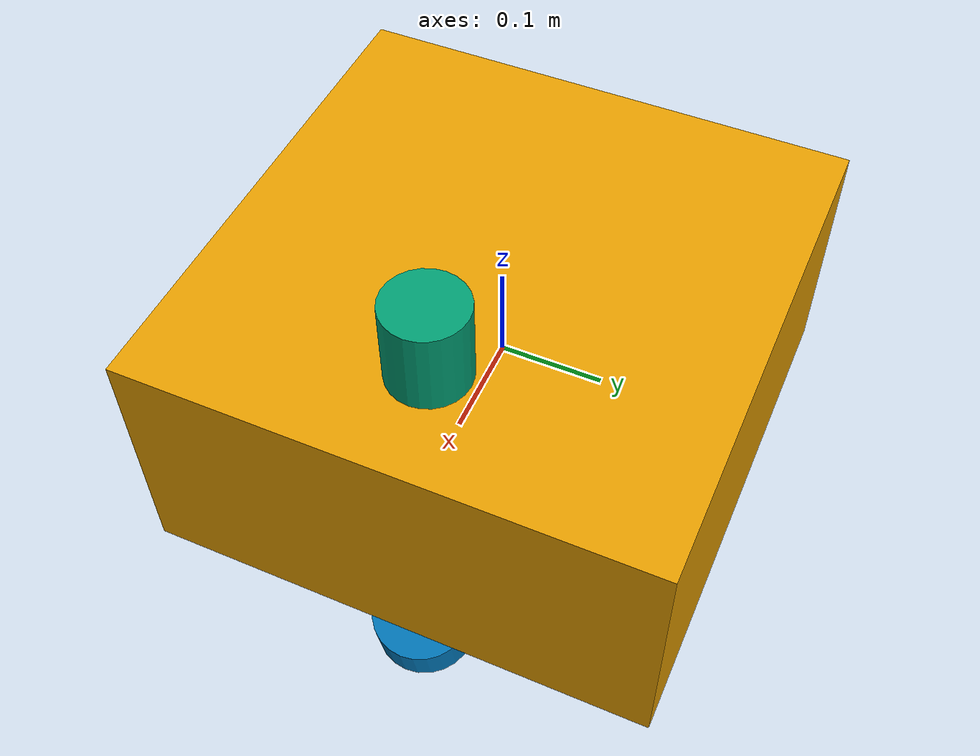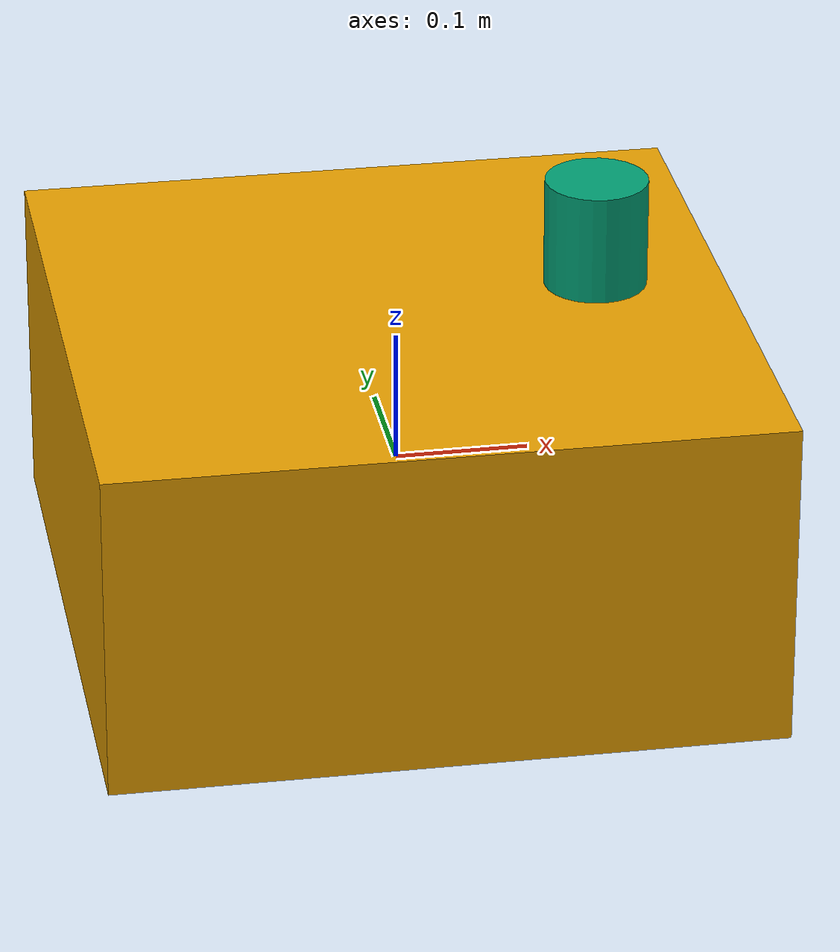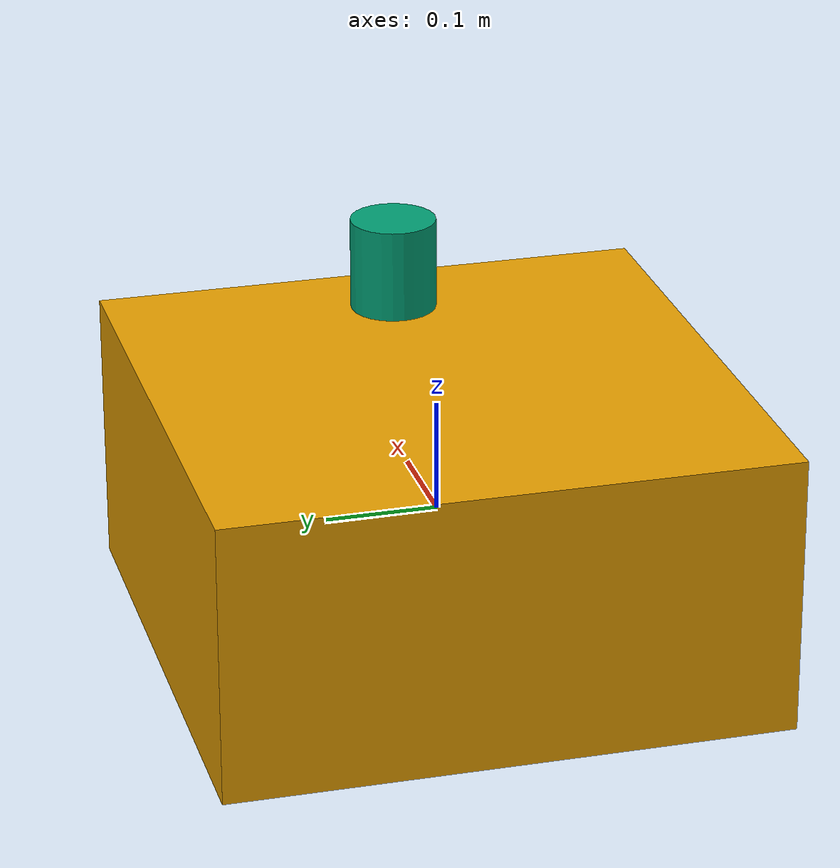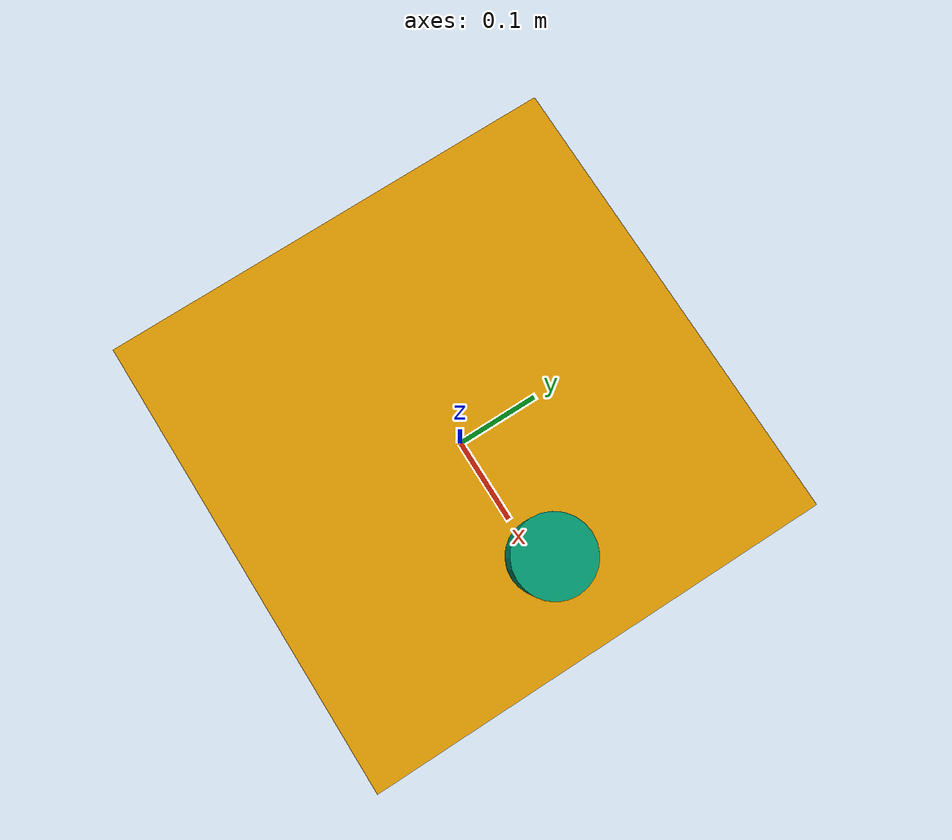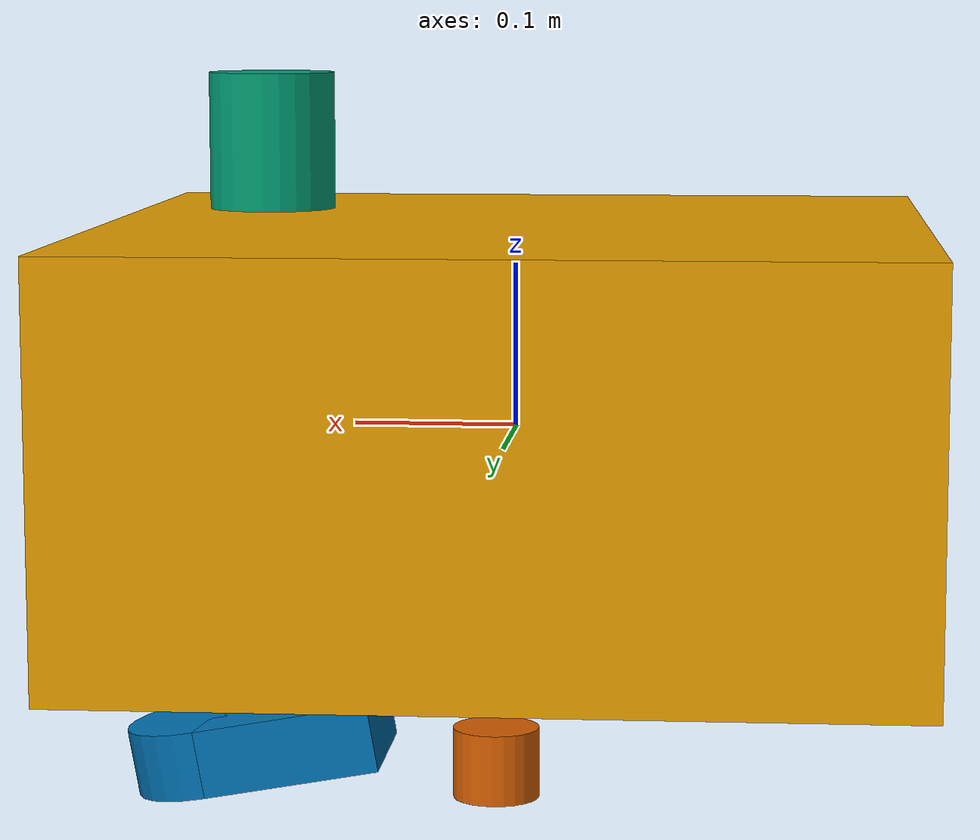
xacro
<?xml version="1.0"?>
<robot xmlns:xacro="http://www.ros.org/wiki/xacro" name="dummy">
	<!-- Dummy xacro courtesy of:
		https://github.com/ubi-agni/human_hand/blob/master/robots/human_hand.urdf.xacro
		https://wiki.ros.org/xacro
	-->

	<!-- Creating robot -->
  <link name="base_link">
    <inertial>
      <origin xyz="0 0 0" />
      <mass value="20.0" />
      <inertia ixx="0.52083125" ixy="0.0" ixz="0.0" iyy="0.52083125" iyz="0.0" izz="0.83333" />
    </inertial>
    <visual name="visual">
      <origin xyz="0 0 0" />
      <geometry>
        <box size=".50 .50 .25" />
      </geometry>
    </visual>
    <collision name="collision">
      <origin xyz="0 0 0" />
      <geometry>
        <box size=".50 .50 .25" />
      </geometry>
    </collision>
  </link>
  <gazebo reference="base_link">
    <turnGravityOff>1</turnGravityOff>
  </gazebo>

  <!-- Link must have inertia, otherwise overlooked by URDF parser -->
  <link name="imu_link">
    <inertial>
      <origin xyz="0 0 0" />
      <mass value="0.01" />
      <inertia ixx="0.0" ixy="0.0" ixz="0.0" iyy="0.0" iyz="0.0" izz="0.0" />
    </inertial>
  </link>
  <joint name="imu_joint" type="revolute">
    <origin xyz="0 0 0" rpy="0 0 0" />
    <axis xyz="0 0 1" />
    <parent link="base_link" />
    <child link="imu_link" />
    <limit upper="0" lower="0" effort="0" velocity="0" />
  </joint>
  <gazebo reference="imu_link">
    <turnGravityOff>1</turnGravityOff>
    <sensor name="imu_sensor" type="imu">
      <always_on>true</always_on>
      <update_rate>100</update_rate>
      <visualize>true</visualize>
      <topic>__default_topic__</topic>
      <plugin filename="libgazebo_ros_imu_sensor.so" name="imu_plugin">
        <topicName>imu</topicName>
        <bodyName>imu_link</bodyName>
        <updateRateHZ>10.0</updateRateHZ>
        <gaussianNoise>0.0</gaussianNoise>
        <xyzOffset>0 0 0</xyzOffset>
        <rpyOffset>0 0 0</rpyOffset>
        <frameName>imu_link</frameName>
        <initialOrientationAsReference>false</initialOrientationAsReference>
      </plugin>
      <pose>0 0 0 0 0 0</pose>
    </sensor>
  </gazebo>

  <!-- This separation is incredibly crucial:
        https://github.com/gazebosim/ros_gz/issues/109#issuecomment-689142931
        https://classic.gazebosim.org/tutorials?tut=ros_gzplugins
	-->
	<gazebo>
		<plugin name="dummy_control" filename="libdummy_plugin.so">
			<!-- D term used here as a damper -->
			<pid_x>2 0.0 10</pid_x>
			<pid_y>2 0.0 10</pid_y>
			<pid_z>2 0.0 10</pid_z>
			<pid_r>1 0.0 5</pid_r>
			<pid_p>1 0.0 5</pid_p>
			<pid_w>1 0.0 5</pid_w>
			<max_force>100</max_force>
			<max_torque>100</max_torque>
			<link_name>base_link</link_name>
		</plugin>

		<!-- Send joint states:
		https://answers.ros.org/question/355311/gazebo-is-not-able-to-send-the-joint-states-to-generate-tf-tree/ -->
		<plugin name="joint_state_publisher" filename="libgazebo_ros_joint_state_publisher.so">
			<robotNamespace>dummy</robotNamespace>
			<!-- Must have this list of joints -->
			<jointName>imu_joint, ping360_sonar_joint, mbe_sonar_joint, ping2_joint, ping360_depth_joint</jointName>
			<updateRate>30</updateRate>
		</plugin>

		<!-- Link base_link to map:
		https://answers.gazebosim.org//question/5308/getting-the-gazebo-plugin-p3d-working-hydro/ -->
		<plugin name="map_to_base_link" filename="libgazebo_ros_p3d.so">
			<alwaysOn>true</alwaysOn>
			<updateRate>30</updateRate>
			<bodyName>base_link</bodyName>
			<topicName>dummy/base_link</topicName>
			<frameName>map</frameName>
		</plugin>
	</gazebo>

	<!-- Mount the sonars -->
  <!-- Attention: need to update joint_state_publisher above-->
	<xacro:include filename="../models/sonars.urdf.xacro"/>
	<xacro:ping360_macro parent_link="base_link" namespace="/dummy" gravity="false">
		<origin xyz="0.15 0 0.175" rpy="0 0 0"/>
		<axis xyz="0 0 1"/>
	</xacro:ping360_macro>
	<xacro:mbe_macro parent_link="base_link" namespace="/dummy" gravity="false">
    <origin xyz="0.15 0 -0.2" rpy="0 0.174533 0"/>
    <axis xyz="0 0 1"/>
	</xacro:mbe_macro>
	<xacro:ping2_macro parent_link="base_link" namespace="/dummy" gravity="false">
    <origin xyz="0.0 0.15 -0.175" rpy="0 1.57079632679 0" />
    <axis xyz="0 0 1" />
	</xacro:ping2_macro>
</robot>

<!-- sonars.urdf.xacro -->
<robot xmlns:xacro="http://www.ros.org/wiki/xacro">
	<xacro:property name="deg2rad" value="${pi / 180}"/>

	<!-- Macro for sonar sensor -->
	<xacro:macro name="sonar_macro" params=
		"sonar_link topic hfov vfov bin_count beam_count image_width image_height
		clip_near clip_far image_format=R32G32B32 disable_color:=true
		faux_depth:=false faux_depth_link:='' faux_depth_namespace:=''
		prefix:=^ namespace:=^ gravity:=^"
	>
		<gazebo reference="${sonar_link}">
			<!-- Plugin for sonar -->
			<xacro:unless value="${gravity}">
				<turnGravityOff>1</turnGravityOff>
			</xacro:unless>
			<sensor name="Sonar" type="camera">
				<plugin name="FLS" filename="libForwardLookingSonarGazebo.so">
					<topic>${namespace}/${topic}</topic>
					<link_reference>${sonar_link}</link_reference>
					<horizontal_fov>${hfov}</horizontal_fov>
					<vfov>${vfov}</vfov>
					<bin_count>${bin_count}</bin_count>
					<beam_count>${beam_count}</beam_count>
					<image>
						<width>${image_width}</width>
						<height>${image_height}</height>
						<format>${image_format}</format>
					</image>
					<clip>
						<near>${clip_near}</near>
						<far>${clip_far}</far>
					</clip>
					<disable_color>${disable_color}</disable_color>
				</plugin>
			</sensor>

			<!-- Plugin for point cloud (simulation only):
			http://classic.gazebosim.org/tutorials?tut=ros_depth_camera -->
			<xacro:if value="${faux_depth}">
				<sensor name="Depth" type="depth">
					<update_rate>1</update_rate>
					<camera>
						<horizontal_fov>${hfov}</horizontal_fov>
						<image>
							<width>${beam_count}</width>
							<!-- Approximately 128 * tan(25/2 deg) / tan(120/2 deg) -->
							<height>${round(beam_count * tan(vfov/2) / tan(hfov/2))}</height>
							<format>R8G8B8</format>
						</image>
						<clip>
							<near>${clip_near}</near>
							<far>${clip_far}</far>
						</clip>
					</camera>
					<plugin name="DepthCamera" filename="libgazebo_ros_openni_kinect.so">
						<baseline>0.25</baseline> <!-- Unused -->
						<alwaysOn>true</alwaysOn>
						<updateRate>0.0</updateRate>
						<cameraName>DepthCamera</cameraName>
						<imageTopicName>${namespace}/${faux_depth_namespace}/color/image_raw</imageTopicName>
						<cameraInfoTopicName>${namespace}/${faux_depth_namespace}/color/camera_info</cameraInfoTopicName>
						<depthImageTopicName>${namespace}/${faux_depth_namespace}/depth/image_raw</depthImageTopicName>
						<depthImageCameraInfoTopicName>${namespace}/${faux_depth_namespace}/depth/camera_info</depthImageCameraInfoTopicName>
						<pointCloudTopicName>${namespace}/${faux_depth_namespace}/depth/points</pointCloudTopicName>
						<frameName>${faux_depth_link}</frameName>
						<pointCloudCutoff>${clip_near}</pointCloudCutoff>
						<pointCloudCutoffMax>${clip_far}</pointCloudCutoffMax>
					</plugin>
				</sensor>
			</xacro:if>
		</gazebo>
	</xacro:macro>

	<!-- Macro for altimeter -->
	<xacro:macro name="altimeter_macro" params=
		"alti_link topic update_rate range_min range_max range_resolution
		noise_mean noise_stddev visualize:=true prefix:=^ namespace:=^ gravity:=^"
	>
		<gazebo reference="${alti_link}">
			<!-- Plugin for altimeter -->
			<xacro:unless value="${gravity}">
				<turnGravityOff>1</turnGravityOff>
			</xacro:unless>
			<sensor type="ray" name="Altimeter">
				<visualize>${visualize}</visualize>
				<update_rate>${update_rate}</update_rate>
				<ray>
					<scan>
						<horizontal>
						<samples>1</samples>
						<resolution>1</resolution>
						<min_angle>0.0</min_angle>
						<max_angle>0.0</max_angle>
						</horizontal>
					</scan>
					<range>
						<min>${range_min}</min>
						<max>${range_max}</max>
						<resolution>${range_resolution}</resolution>
					</range>
					<noise>
						<type>gaussian</type>
						<mean>${noise_mean}</mean>
						<stddev>${noise_stddev}</stddev>
					</noise>
				</ray>
				<plugin name="Altimeter" filename="libgazebo_ros_laser.so">
					<topicName>${namespace}/${topic}</topicName>
					<frameName>${alti_link}</frameName>
				</plugin>
			</sensor>
		</gazebo>
	</xacro:macro>

	<!-- Macro for Ping360 -->
	<xacro:macro name="ping360_macro" params="parent_link *joint_origin *joint_axis prefix:='' namespace:='' gravity:=true">
		<link name="${prefix}ping360_sonar_link">
			<inertial>
				<mass value="0.1" />
				<origin xyz="0 0 0" rpy="0 0 0" />
				<inertia ixx="0.01" ixy="0.001" ixz="0.001" iyy="0.01" iyz="0.001" izz="0.01" />
			</inertial>
			<visual name="visual">
				<origin xyz="0 0 0" rpy="0 0 0" />
				<geometry>
					<cylinder length="0.083" radius="0.0385" />
				</geometry>
			</visual>
			<collision>
				<origin xyz="0 0 0" rpy="0 0 0" />
				<geometry>
					<box size="0.1 0.1 0.1" />
				</geometry>
			</collision>
		</link>
		<joint name="${prefix}ping360_sonar_joint" type="revolute">
			<xacro:insert_block name="joint_origin"/>
			<xacro:insert_block name="joint_axis"/>
			<parent link="${parent_link}" />
			<child link="${prefix}ping360_sonar_link" />
			<limit upper="0" lower="0" effort="0" velocity="0" />
		</joint>
		<link name="${prefix}ping360_depth_link">
			<inertial>
				<mass value="0.0001" />
				<origin xyz="0 0 0" rpy="0 0 0" />
				<inertia ixx="0.0001" ixy="0.0001" ixz="0.0001" iyy="0.0001" iyz="0.0001" izz="0.0001" />
			</inertial>
		</link>
		<joint name="${prefix}ping360_depth_joint" type="revolute">
			<origin xyz="0 0 0" rpy="-1.57079632679 0 -1.57079632679"/>
			<axis xyz="0 0 1"/>
			<parent link="${prefix}ping360_sonar_link" />
			<child link="${prefix}ping360_depth_link" />
			<limit upper="0" lower="0" effort="0" velocity="0" />
		</joint>

		<!-- Add the sonar plugin -->
		<xacro:sonar_macro
			sonar_link="${prefix}ping360_sonar_link" topic="ping360_sonar"
			hfov="${120*deg2rad}" vfov="${25*deg2rad}" bin_count="1024" beam_count="128"
			image_width="1024" image_height="1024" clip_near="0.75" clip_far="10.0" image_format="R8G8B8"
			faux_depth="true" faux_depth_link="${prefix}ping360_depth_link" faux_depth_namespace="ping360_sim_depth"
			prefix="${prefix}" namespace="${namespace}" gravity="${gravity}"
		/>
	</xacro:macro>

	<!-- Macro for MBE -->
	<xacro:macro name="mbe_macro" params="parent_link *joint_origin *joint_axis prefix:='' namespace:='' gravity:=true">
		<link name="${prefix}mbe_sonar_link">
			<inertial>
				<mass value="0.78" />
				<origin xyz="0 0 0" rpy="0 0 0" />
				<inertia ixx="0.01" ixy="0.001" ixz="0.001" iyy="0.01" iyz="0.001" izz="0.01" />
			</inertial>
			<visual name="visual_cylinder">
				<origin xyz="0.044 0 0" rpy="0 0 0" />
				<geometry>
					<cylinder length="0.0423" radius="0.05" />
				</geometry>
				<material name="mbe_material">
					<ambient>0.3 0.6 0.1 1</ambient>
					<diffuse>0.6 0.6 0.6 1</diffuse>
					<specular>0.2 0.2 0.2 0</specular>
					<emissive>0 0 0 1</emissive>
				</material>
			</visual>
			<visual name="visual_box">
				<origin xyz="-0.011 0 0" rpy="0 0 0" />
				<geometry>
					<box size="0.11 0.1 0.0423" />
				</geometry>
			</visual>
			<collision>
				<origin xyz="0 0 0" rpy="0 0 0" />
				<geometry>
					<box size="0.1 0.1 0.1" />
				</geometry>
			</collision>
		</link>
		<joint name="${prefix}mbe_sonar_joint" type="revolute">
			<xacro:insert_block name="joint_origin"/>
			<xacro:insert_block name="joint_axis"/>
			<parent link="${parent_link}" />
			<child link="${prefix}mbe_sonar_link" />
			<limit upper="0" lower="0" effort="0" velocity="0" />
		</joint>

		<!-- Add the sonar plugin -->
		<xacro:sonar_macro
			sonar_link="${prefix}mbe_sonar_link" topic="mbe_sonar"
			hfov="${90*deg2rad}" vfov="${20*deg2rad}" bin_count="1024" beam_count="256"
			image_width="1024" image_height="1024" clip_near="0.3" clip_far="10.0"
			image_format="R8G8B8" prefix="${prefix}" namespace="${namespace}"
			gravity="${gravity}"
		/>
	</xacro:macro>

	<!-- Macro for Ping2 -->
	<xacro:macro name="ping2_macro" params="parent_link *joint_origin *joint_axis prefix:='' namespace:='' gravity:=true">
		<link name="${prefix}ping2_link">
			<inertial>
				<mass value="0.01" />
				<origin xyz="0 0 0" rpy="0 0 0" />
				<inertia ixx="0.01" ixy="0.001" ixz="0.001" iyy="0.01" iyz="0.001" izz="0.01" />
			</inertial>
			<visual name="visual">
				<origin xyz="0 0 0" rpy="0 1.57079632679 0" />
				<geometry>
					<cylinder length="0.041" radius="0.025" />
				</geometry>
			</visual>
			<collision>
				<origin xyz="0 0 0" rpy="0 0 0" />
				<geometry>
					<box size="0.1 0.1 0.1" />
				</geometry>
			</collision>
		</link>
		<joint name="${prefix}ping2_joint" type="revolute">
			<xacro:insert_block name="joint_origin"/>
			<xacro:insert_block name="joint_axis"/>
			<parent link="${parent_link}" />
			<child link="${prefix}ping2_link" />
			<limit upper="0" lower="0" effort="0" velocity="0" />
		</joint>

		<!-- Add the altimeter plugin -->
		<xacro:altimeter_macro
			alti_link="${prefix}ping2_link" topic="ping2_ray"
			update_rate="5" range_min="0.3" range_max="50" range_resolution="0.01"
			noise_mean="0.0" noise_stddev="0.05" visualize="true"
			prefix="${prefix}" namespace="${namespace}" gravity="${gravity}"
		/>
	</xacro:macro>
</robot>
